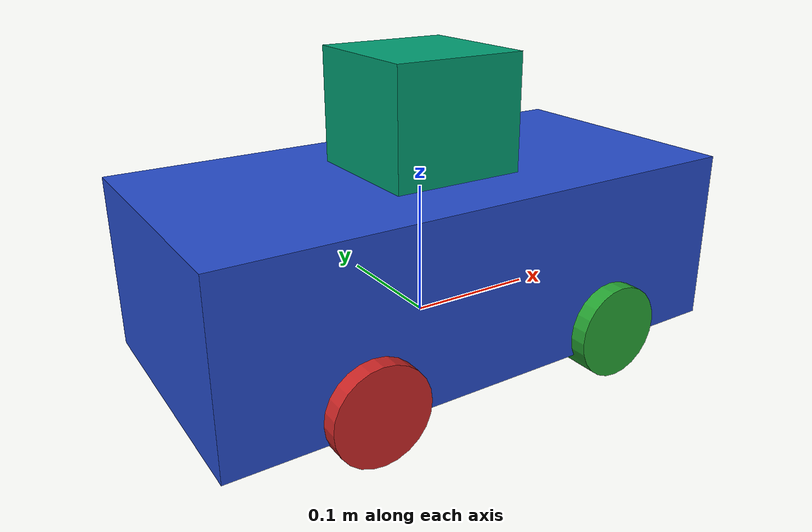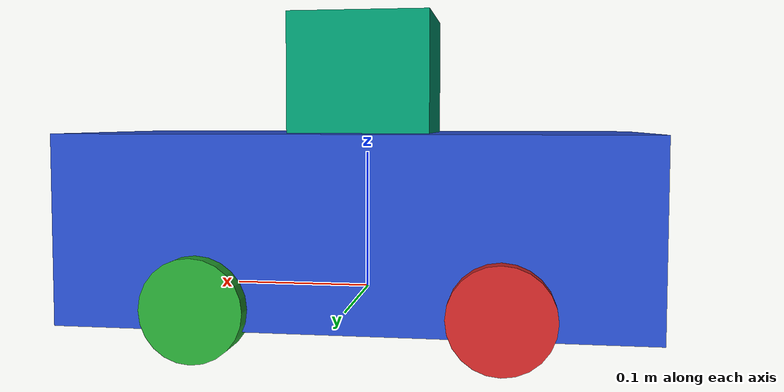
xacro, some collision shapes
<?xml version='1.0'?>

<robot name="trixy" xmlns:xacro="http://www.ros.org/wiki/xacro">

  <xacro:include filename="$(find trixy)/urdf/trixy.gazebo" />

  <gazebo reference="front_left_wheel">
    <material>Gazebo/Green</material>
  </gazebo>

  <gazebo reference="front_right_wheel">
    <material>Gazebo/Green</material>
  </gazebo>

  <gazebo reference="rear_left_wheel">
    <material>Gazebo/Red</material>
  </gazebo>

  <gazebo reference="rear_right_wheel">
    <material>Gazebo/Red</material>
  </gazebo>

  <gazebo reference="camera">
    <material>Gazebo/White</material>
  </gazebo>

  <gazebo reference="chassis">
    <material>Gazebo/Blue</material>
  </gazebo>
  <link name="base_link"></link>

  <joint name="robot_footprint_joint" type="fixed">
    <origin xyz="0 0 0" rpy="0 0 0" />
    <parent link="base_link"/>
    <child link="chassis" />
  </joint>

  <joint name="camera_joint" type="fixed">
    <origin xyz="0.17 0 0.05" rpy="0 0 0" />
    <parent link="chassis"/>
    <child link="camera" />
    <axis xyz="0 1 0"/>
  </joint>

  <joint name="hokuyo_joint" type="fixed">
    <origin xyz="0 0 0.15" rpy="0 0 0" />
    <parent link="chassis"/>
    <child link="hokuyo" />
    <axis xyz="0 1 0"/>
  </joint>

  <joint type="continuous" name="front_left_wheel_hinge">
    <origin xyz="0.1 0.10 0" rpy="0 0 0" />
    <parent link="chassis"/>
    <child link="front_left_wheel" />
    <axis xyz="0 1 0" rpy="0 0 0" />
    <limit effort="10000" velocity="1000" />
    <dynamics damping="1.0" friction="1.0" />
  </joint>

  <joint type="continuous" name="front_right_wheel_hinge">
    <origin xyz="0.1 -0.10 0" rpy="0 0 0" />
    <parent link="chassis"/>
    <child link="front_right_wheel" />
    <axis xyz="0 1 0" rpy="0 0 0" />
    <limit effort="10000" velocity="1000" />
    <dynamics damping="1.0" friction="1.0" />
  </joint>

  <joint type="continuous" name="rear_left_wheel_hinge">
    <origin xyz="-0.1 0.10 0" rpy="0 0 0" />
    <parent link="chassis"/>
    <child link="rear_left_wheel" />
    <axis xyz="0 1 0" rpy="0 0 0" />
    <limit effort="10000" velocity="1000" />
    <dynamics damping="1.0" friction="1.0" />
  </joint>

  <joint type="continuous" name="rear_right_wheel_hinge">
    <origin xyz="-0.1 -0.10 0" rpy="0 0 0" />
    <parent link="chassis"/>
    <child link="rear_right_wheel" />
    <axis xyz="0 1 0" rpy="0 0 0" />
    <limit effort="10000" velocity="1000" />
    <dynamics damping="1.0" friction="1.0" />
  </joint>

<link name="camera">
    <inertial>
      <mass value="0.1"/>
      <origin xyz="0 0 0" rpy="0 0 0"/>
      <inertia
        ixx="1e-6" ixy="0.0" ixz="0.0"
        iyy="1e-6" iyz="0.0"
        izz="1e-6"
      />
    </inertial>

    <collision>
      <origin xyz="0 0 0" rpy="0 0 0"/>
      <geometry>
        <box size="0.05 0.05 0.05"/>
      </geometry>
    </collision>

    <visual>
      <origin xyz="0 0 0" rpy="0 0 0"/>
      <geometry>
        <box size="0.05 0.05 0.05"/>
      </geometry>
    </visual>

  </link>

  <link name="hokuyo">
    <inertial>
      <mass value="1e-5"/>
      <origin xyz="0 0 0" rpy="0 0 0"/>
      <inertia
        ixx="1e-6" ixy="0.0" ixz="0.0"
        iyy="1e-6" iyz="0.0"
        izz="1e-6"
      />
    </inertial>

    <collision>
      <origin xyz="0 0 0" rpy="0 0 0"/>
      <geometry>
        <box size="0.1 0.1 0.1"/>
      </geometry>
    </collision>

    <visual>
      <origin xyz="0 0 0" rpy="0 0 0"/>
      <geometry>
        <mesh filename="package://trixy/meshes/hokuyo.dae"/>
      </geometry>
    </visual>

  </link>

  <link name="front_left_wheel">
    <inertial>
      <mass value="5"/>
      <origin xyz="0 0 0" rpy="0 1.5707 1.5707"/>
      <inertia
        ixx="0.1" ixy="0.0" ixz="0.0"
        iyy="0.1" iyz="0.0"
        izz="0.1"
      />
    </inertial>

    <collision>
      <origin xyz="0 0 0" rpy="0 1.5707 1.5707"/>
      <geometry>
        <cylinder radius="0.035" length="0.025"/>
      </geometry>
    </collision>

    <visual>
      <origin xyz="0 0 0" rpy="0 1.5707 1.5707"/>
      <geometry>
        <cylinder radius="0.035" length="0.025"/>
      </geometry>
    </visual>

  </link>

  <link name="front_right_wheel">
    <inertial>
      <mass value="5"/>
      <origin xyz="0 0 0" rpy="0 1.5707 1.5707"/>
      <inertia
        ixx="0.1" ixy="0.0" ixz="0.0"
        iyy="0.1" iyz="0.0"
        izz="0.1"
      />
    </inertial>

    <collision>
      <origin xyz="0 0 0" rpy="0 1.5707 1.5707"/>
      <geometry>
        <cylinder radius="0.035" length="0.025"/>
      </geometry>
    </collision>

    <visual>
      <origin xyz="0 0 0" rpy="0 1.5707 1.5707"/>
      <geometry>
        <cylinder radius="0.035" length="0.025"/>
      </geometry>
    </visual>

  </link>

  <link name="rear_left_wheel">
    <inertial>
      <mass value="5"/>
      <origin xyz="0 0 0" rpy="0 1.5707 1.5707"/>
      <inertia
        ixx="0.1" ixy="0.0" ixz="0.0"
        iyy="0.1" iyz="0.0"
        izz="0.1"
      />
    </inertial>

    <collision>
      <origin xyz="0 0 0" rpy="0 1.5707 1.5707"/>
      <geometry>
        <cylinder radius="0.035" length="0.025"/>
      </geometry>
    </collision>

    <visual>
      <origin xyz="0 0 0" rpy="0 1.5707 1.5707"/>
      <geometry>
        <cylinder radius="0.035" length="0.025"/>
      </geometry>
    </visual>

  </link>

  <link name="rear_right_wheel">
    <inertial>
      <mass value="5"/>
      <origin xyz="0 0 0" rpy="0 1.5707 1.5707"/>
      <inertia
        ixx="0.1" ixy="0.0" ixz="0.0"
        iyy="0.1" iyz="0.0"
        izz="0.1"
      />
    </inertial>

    <collision>
      <origin xyz="0 0 0" rpy="0 1.5707 1.5707"/>
      <geometry>
        <cylinder radius="0.035" length="0.025"/>
      </geometry>
    </collision>

    <visual>
      <origin xyz="0 0 0" rpy="0 1.5707 1.5707"/>
      <geometry>
        <cylinder radius="0.035" length="0.025"/>
      </geometry>
    </visual>

  </link>

  <link name='chassis'>
    <pose>0 0 0.1 0 0 0</pose>

    <inertial>
      <mass value="15.0"/>
      <origin xyz="0.0 0 0" rpy=" 0 0 0"/>
      <inertia
          ixx="0.1" ixy="0" ixz="0"
          iyy="0.1" iyz="0"
          izz="0.1"
      />
    </inertial>

    <collision name='collision'>
      <origin xyz="0 0 0.05" rpy=" 0 0 0"/>
      <geometry>
        <box size="0.4 0.2 0.13"/>
      </geometry>
    </collision>

    <visual name='chassis_visual'>
      <origin xyz="0 0 0.05" rpy=" 0 0 0"/>
      <geometry>
       <box size="0.4 0.2 0.13"/>
      </geometry>
    </visual>
  </link>

</robot>
